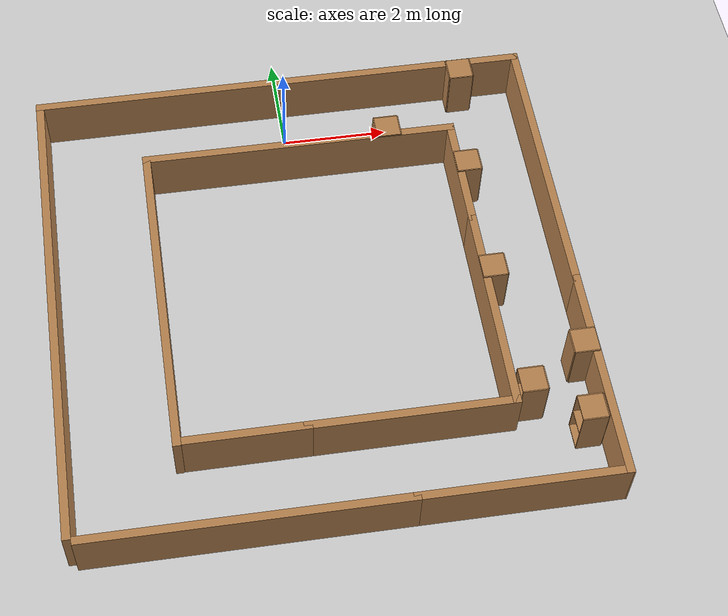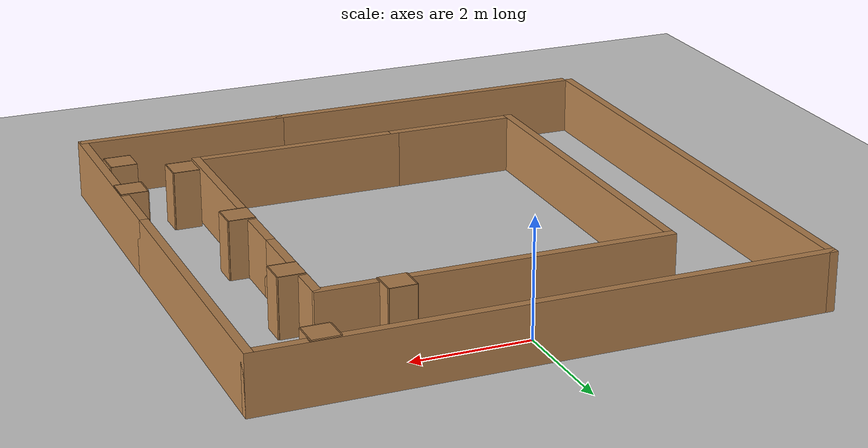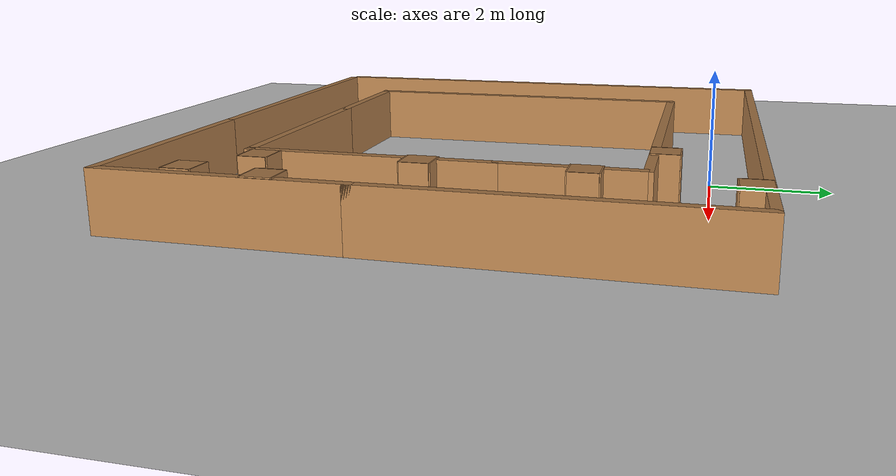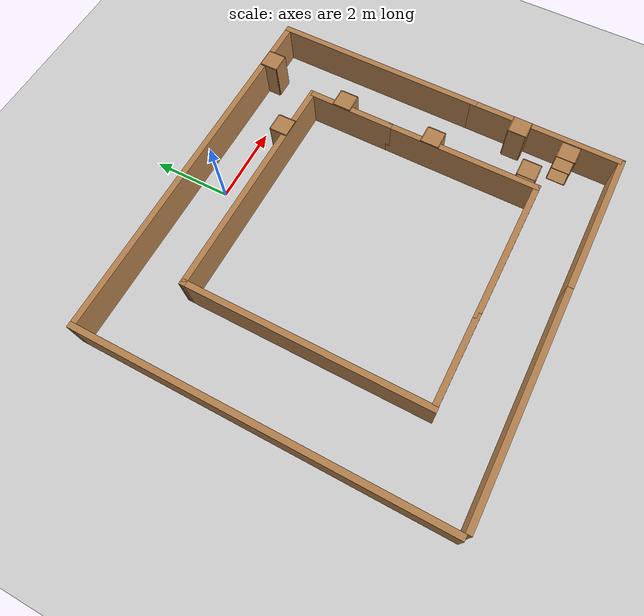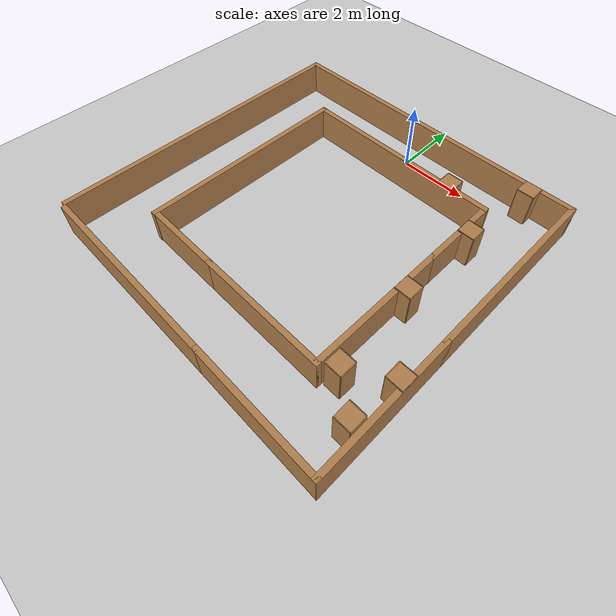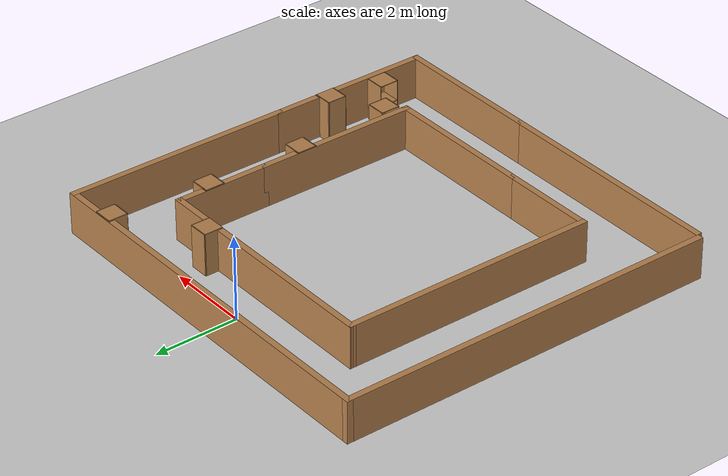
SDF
<sdf version="1.6">
 <world name="default">
  <light name="sun" type="directional">
   <pose>0 0 10 0 -0 0</pose>
   <diffuse>0.8 0.8 0.8 1</diffuse>
   <specular>0.2 0.2 0.2 1</specular>
   <attenuation>
    <range>1000</range>
    <constant>0.9</constant>
    <linear>0.01</linear>
    <quadratic>0.001</quadratic>
   </attenuation>
   <direction>0.5 0.1 -0.9</direction>
  </light>
  <model name="ground_plane">
   <static>1</static>
   <link name="link">
    <collision name="collision">
     <geometry><plane><normal>0 0 1</normal><size>100 100</size></plane></geometry>
     <surface><friction><ode><mu>100</mu><mu2>50</mu2></ode></friction></surface>
    </collision>
    <visual name="visual">
     <cast_shadows>0</cast_shadows>
     <geometry><plane><normal>0 0 1</normal><size>100 100</size></plane></geometry>
     <material>
      <script><uri>file://media/materials/scripts/gazebo.material</uri><name>Gazebo/Grey</name></script>
     </material>
    </visual>
    <velocity_decay><linear>0</linear><angular>0</angular></velocity_decay>
   </link>
  </model>
  <scene><ambient>0.4 0.4 0.4 1</ambient><background>0.7 0.7 0.7 1</background><shadows>0</shadows></scene>
  <physics name="default_physics" default="0" type="ode">
   <max_step_size>0.001</max_step_size>
   <real_time_factor>1</real_time_factor>
   <real_time_update_rate>1000</real_time_update_rate>
  </physics>
  <spherical_coordinates>
   <surface_model>EARTH_WGS84</surface_model>
   <latitude_deg>0</latitude_deg>
   <longitude_deg>0</longitude_deg>
   <elevation>0</elevation>
   <heading_deg>0</heading_deg>
  </spherical_coordinates>
  <model name="Circuit_ql_2">
   <pose>1e-06 -3.85 0 0 -0 1.567</pose>
   <link name="Wall_0">
    <collision name="Wall_0_Collision">
     <geometry><box><size>5.75 0.15 1</size></box></geometry>
     <pose>0 0 0.5 0 -0 0</pose>
    </collision>
    <visual name="Wall_0_Visual">
     <pose>0 0 0.5 0 -0 0</pose>
     <geometry><box><size>5.75 0.15 1</size></box></geometry>
     <material>
      <script><uri>file://media/materials/scripts/gazebo.material</uri><name>Gazebo/Wood</name></script>
      <ambient>1 1 1 1</ambient>
     </material>
    </visual>
    <pose>-4.6 1.725 0 0 0 -1.5708</pose>
   </link>
   <link name="Wall_1">
    <collision name="Wall_1_Collision">
     <geometry><box><size>4 0.15 1</size></box></geometry>
     <pose>0 0 0.5 0 -0 0</pose>
    </collision>
    <visual name="Wall_1_Visual">
     <pose>0 0 0.5 0 -0 0</pose>
     <geometry><box><size>4 0.15 1</size></box></geometry>
     <material>
      <script><uri>file://media/materials/scripts/gazebo.material</uri><name>Gazebo/Wood</name></script>
      <ambient>1 1 1 1</ambient>
     </material>
    </visual>
    <pose>-2.675 -4.675 0 0 -0 0</pose>
   </link>
   <link name="Wall_11">
    <collision name="Wall_11_Collision">
     <geometry><box><size>2.25 0.15 1</size></box></geometry>
     <pose>0 0 0.5 0 -0 0</pose>
    </collision>
    <visual name="Wall_11_Visual">
     <pose>0 0 0.5 0 -0 0</pose>
     <geometry><box><size>2.25 0.15 1</size></box></geometry>
     <material>
      <script><uri>file://media/materials/scripts/gazebo.material</uri><name>Gazebo/Wood</name></script>
      <ambient>1 1 1 1</ambient>
     </material>
    </visual>
    <pose>-3.036 1.559 0 0 0 -1.5708</pose>
   </link>
   <link name="Wall_12">
    <collision name="Wall_12_Collision">
     <geometry><box><size>4 0.15 1</size></box></geometry>
     <pose>0 0 0.5 0 -0 0</pose>
    </collision>
    <visual name="Wall_12_Visual">
     <pose>0 0 0.5 0 -0 0</pose>
     <geometry><box><size>4 0.15 1</size></box></geometry>
     <material>
      <script><uri>file://media/materials/scripts/gazebo.material</uri><name>Gazebo/Wood</name></script>
      <ambient>1 1 1 1</ambient>
     </material>
    </visual>
    <pose>-1.111 -3.091 0 0 -0 0</pose>
   </link>
   <link name="Wall_13">
    <collision name="Wall_13_Collision">
     <geometry><box><size>3.75 0.15 1</size></box></geometry>
     <pose>0 0 0.5 0 -0 0</pose>
    </collision>
    <visual name="Wall_13_Visual">
     <pose>0 0 0.5 0 -0 0</pose>
     <geometry><box><size>3.75 0.15 1</size></box></geometry>
     <material>
      <script><uri>file://media/materials/scripts/gazebo.material</uri><name>Gazebo/Wood</name></script>
      <ambient>1 1 1 1</ambient>
     </material>
    </visual>
    <pose>-3.036 -1.291 0 0 0 -1.5708</pose>
   </link>
   <link name="Wall_14">
    <collision name="Wall_14_Collision">
     <geometry><box><size>2.25 0.15 1</size></box></geometry>
     <pose>0 0 0.5 0 -0 0</pose>
    </collision>
    <visual name="Wall_14_Visual">
     <pose>0 0 0.5 0 -0 0</pose>
     <geometry><box><size>2.25 0.15 1</size></box></geometry>
     <material>
      <script><uri>file://media/materials/scripts/gazebo.material</uri><name>Gazebo/Wood</name></script>
      <ambient>1 1 1 1</ambient>
     </material>
    </visual>
    <pose>1.9 -3.091 0 0 -0 0</pose>
   </link>
   <link name="Wall_15">
    <collision name="Wall_15_Collision">
     <geometry><box><size>5.98502 0.15 1</size></box></geometry>
     <pose>0 0 0.5 0 -0 0</pose>
    </collision>
    <visual name="Wall_15_Visual">
     <pose>0 0 0.5 0 -0 0</pose>
     <geometry><box><size>5.98502 0.15 1</size></box></geometry>
     <material>
      <script><uri>file://media/materials/scripts/gazebo.material</uri><name>Gazebo/Wood</name></script>
      <ambient>1 1 1 1</ambient>
     </material>
    </visual>
    <pose>3.0215 -0.1735 0 0 -0 1.56823</pose>
   </link>
   <link name="Wall_16">
    <collision name="Wall_16_Collision">
     <geometry><box><size>6.2 0.15 1</size></box></geometry>
     <pose>0 0 0.5 0 -0 0</pose>
    </collision>
    <visual name="Wall_16_Visual">
     <pose>0 0 0.5 0 -0 0</pose>
     <geometry><box><size>6.2 0.15 1</size></box></geometry>
     <material>
      <script><uri>file://media/materials/scripts/gazebo.material</uri><name>Gazebo/Wood</name></script>
      <ambient>1 1 1 1</ambient>
     </material>
    </visual>
    <pose>-0.02 2.744 0 0 -0 3.14159</pose>
   </link>
   <link name="Wall_2">
    <collision name="Wall_2_Collision">
     <geometry><box><size>3.7 0.15 1</size></box></geometry>
     <pose>0 0 0.5 0 -0 0</pose>
    </collision>
    <visual name="Wall_2_Visual">
     <pose>0 0 0.5 0 -0 0</pose>
     <geometry><box><size>3.7 0.15 1</size></box></geometry>
     <material>
      <script><uri>file://media/materials/scripts/gazebo.material</uri><name>Gazebo/Wood</name></script>
      <ambient>1 1 1 1</ambient>
     </material>
    </visual>
    <pose>-4.6 -2.875 0 0 0 -1.5708</pose>
   </link>
   <link name="Wall_3">
    <collision name="Wall_3_Collision">
     <geometry><box><size>5.5 0.15 1</size></box></geometry>
     <pose>0 0 0.5 0 -0 0</pose>
    </collision>
    <visual name="Wall_3_Visual">
     <pose>0 0 0.5 0 -0 0</pose>
     <geometry><box><size>5.5 0.15 1</size></box></geometry>
     <material>
      <script><uri>file://media/materials/scripts/gazebo.material</uri><name>Gazebo/Wood</name></script>
      <ambient>1 1 1 1</ambient>
     </material>
    </visual>
    <pose>1.925 -4.675 0 0 -0 0</pose>
   </link>
   <link name="Wall_7">
    <collision name="Wall_7_Collision">
     <geometry><box><size>9.5 0.15 1</size></box></geometry>
     <pose>0 0 0.5 0 -0 0</pose>
    </collision>
    <visual name="Wall_7_Visual">
     <pose>0 0 0.5 0 -0 0</pose>
     <geometry><box><size>9.5 0.15 1</size></box></geometry>
     <material>
      <script><uri>file://media/materials/scripts/gazebo.material</uri><name>Gazebo/Wood</name></script>
      <ambient>1 1 1 1</ambient>
     </material>
    </visual>
    <pose>4.6 0 0 0 -0 1.5708</pose>
   </link>
   <link name="Wall_9">
    <collision name="Wall_9_Collision">
     <geometry><box><size>9.25 0.15 1</size></box></geometry>
     <pose>0 0 0.5 0 -0 0</pose>
    </collision>
    <visual name="Wall_9_Visual">
     <pose>0 0 0.5 0 -0 0</pose>
     <geometry><box><size>9.25 0.15 1</size></box></geometry>
     <material>
      <script><uri>file://media/materials/scripts/gazebo.material</uri><name>Gazebo/Wood</name></script>
      <ambient>1 1 1 1</ambient>
     </material>
    </visual>
    <pose>0.05 4.675 0 0 -0 3.14159</pose>
   </link>
   <static>1</static>
  </model>
  <gravity>0 0 -9.8</gravity>
  <magnetic_field>6e-06 2.3e-05 -4.2e-05</magnetic_field>
  <atmosphere type="adiabatic"/>
  <audio><device>default</device></audio>
  <model name="cabinet">
   <static>1</static>
   <link name="cabinet_bottom_plate">
    <inertial>
     <pose>0 0 -1 0 -0 0</pose>
     <inertia><ixx>2.05</ixx><ixy>0</ixy><ixz>0</ixz><iyy>2.05</iyy><iyz>0</iyz><izz>2.05</izz></inertia>
     <mass>25</mass>
    </inertial>
    <collision name="cabinet_bottom_plate_geom">
     <pose>0 0 0.01 0 -0 0</pose>
     <geometry><box><size>0.45 0.45 0.02</size></box></geometry>
    </collision>
    <visual name="cabinet_bottom_plate_geom_visual">
     <pose>0 0 0.01 0 -0 0</pose>
     <geometry><box><size>0.45 0.45 0.02</size></box></geometry>
     <material>
      <script><uri>file://media/materials/scripts/gazebo.material</uri><name>Gazebo/Wood</name></script>
     </material>
    </visual>
    <collision name="cabinet_bottom_plate_geom_cabinet_back_plate">
     <pose>0.235 0 0.51 0 -0 0</pose>
     <geometry><box><size>0.02 0.45 1.02</size></box></geometry>
    </collision>
    <visual name="cabinet_bottom_plate_geom_cabinet_back_plate_visual">
     <pose>0.235 0 0.51 0 -0 0</pose>
     <geometry><box><size>0.02 0.45 1.02</size></box></geometry>
     <material>
      <script><uri>file://media/materials/scripts/gazebo.material</uri><name>Gazebo/Wood</name></script>
     </material>
    </visual>
    <collision name="cabinet_bottom_plate_geom_cabinet_left_plate">
     <pose>0 0.235 0.51 0 -0 0</pose>
     <geometry><box><size>0.45 0.02 1.02</size></box></geometry>
    </collision>
    <visual name="cabinet_bottom_plate_geom_cabinet_left_plate_visual">
     <pose>0 0.235 0.51 0 -0 0</pose>
     <geometry><box><size>0.45 0.02 1.02</size></box></geometry>
     <material>
      <script><uri>file://media/materials/scripts/gazebo.material</uri><name>Gazebo/Wood</name></script>
     </material>
    </visual>
    <collision name="cabinet_bottom_plate_geom_cabinet_middle_plate">
     <pose>0 0 0.51 0 -0 0</pose>
     <geometry><box><size>0.45 0.45 0.02</size></box></geometry>
    </collision>
    <visual name="cabinet_bottom_plate_geom_cabinet_middle_plate_visual">
     <pose>0 0 0.51 0 -0 0</pose>
     <geometry><box><size>0.45 0.45 0.02</size></box></geometry>
     <material>
      <script><uri>file://media/materials/scripts/gazebo.material</uri><name>Gazebo/Wood</name></script>
     </material>
    </visual>
    <collision name="cabinet_bottom_plate_geom_cabinet_right_plate">
     <pose>0 -0.235 0.51 0 -0 0</pose>
     <geometry><box><size>0.45 0.02 1.02</size></box></geometry>
    </collision>
    <visual name="cabinet_bottom_plate_geom_cabinet_right_plate_visual">
     <pose>0 -0.235 0.51 0 -0 0</pose>
     <geometry><box><size>0.45 0.02 1.02</size></box></geometry>
     <material>
      <script><uri>file://media/materials/scripts/gazebo.material</uri><name>Gazebo/Wood</name></script>
     </material>
    </visual>
    <collision name="cabinet_bottom_plate_geom_cabinet_top_plate">
     <pose>0 0 1.01 0 -0 0</pose>
     <geometry><box><size>0.45 0.45 0.02</size></box></geometry>
    </collision>
    <visual name="cabinet_bottom_plate_geom_cabinet_top_plate_visual">
     <pose>0 0 1.01 0 -0 0</pose>
     <geometry><box><size>0.45 0.45 0.02</size></box></geometry>
     <material>
      <script><uri>file://media/materials/scripts/gazebo.material</uri><name>Gazebo/Wood</name></script>
     </material>
    </visual>
   </link>
   <pose>3.26511 -1.70678 0 0 -0 0</pose>
  </model>
  <model name="cabinet_0">
   <static>1</static>
   <link name="cabinet_bottom_plate">
    <inertial>
     <pose>0 0 -1 0 -0 0</pose>
     <inertia><ixx>2.05</ixx><ixy>0</ixy><ixz>0</ixz><iyy>2.05</iyy><iyz>0</iyz><izz>2.05</izz></inertia>
     <mass>25</mass>
    </inertial>
    <collision name="cabinet_bottom_plate_geom">
     <pose>0 0 0.01 0 -0 0</pose>
     <geometry><box><size>0.45 0.45 0.02</size></box></geometry>
    </collision>
    <visual name="cabinet_bottom_plate_geom_visual">
     <pose>0 0 0.01 0 -0 0</pose>
     <geometry><box><size>0.45 0.45 0.02</size></box></geometry>
     <material>
      <script><uri>file://media/materials/scripts/gazebo.material</uri><name>Gazebo/Wood</name></script>
     </material>
    </visual>
    <collision name="cabinet_bottom_plate_geom_cabinet_back_plate">
     <pose>0.235 0 0.51 0 -0 0</pose>
     <geometry><box><size>0.02 0.45 1.02</size></box></geometry>
    </collision>
    <visual name="cabinet_bottom_plate_geom_cabinet_back_plate_visual">
     <pose>0.235 0 0.51 0 -0 0</pose>
     <geometry><box><size>0.02 0.45 1.02</size></box></geometry>
     <material>
      <script><uri>file://media/materials/scripts/gazebo.material</uri><name>Gazebo/Wood</name></script>
     </material>
    </visual>
    <collision name="cabinet_bottom_plate_geom_cabinet_left_plate">
     <pose>0 0.235 0.51 0 -0 0</pose>
     <geometry><box><size>0.45 0.02 1.02</size></box></geometry>
    </collision>
    <visual name="cabinet_bottom_plate_geom_cabinet_left_plate_visual">
     <pose>0 0.235 0.51 0 -0 0</pose>
     <geometry><box><size>0.45 0.02 1.02</size></box></geometry>
     <material>
      <script><uri>file://media/materials/scripts/gazebo.material</uri><name>Gazebo/Wood</name></script>
     </material>
    </visual>
    <collision name="cabinet_bottom_plate_geom_cabinet_middle_plate">
     <pose>0 0 0.51 0 -0 0</pose>
     <geometry><box><size>0.45 0.45 0.02</size></box></geometry>
    </collision>
    <visual name="cabinet_bottom_plate_geom_cabinet_middle_plate_visual">
     <pose>0 0 0.51 0 -0 0</pose>
     <geometry><box><size>0.45 0.45 0.02</size></box></geometry>
     <material>
      <script><uri>file://media/materials/scripts/gazebo.material</uri><name>Gazebo/Wood</name></script>
     </material>
    </visual>
    <collision name="cabinet_bottom_plate_geom_cabinet_right_plate">
     <pose>0 -0.235 0.51 0 -0 0</pose>
     <geometry><box><size>0.45 0.02 1.02</size></box></geometry>
    </collision>
    <visual name="cabinet_bottom_plate_geom_cabinet_right_plate_visual">
     <pose>0 -0.235 0.51 0 -0 0</pose>
     <geometry><box><size>0.45 0.02 1.02</size></box></geometry>
     <material>
      <script><uri>file://media/materials/scripts/gazebo.material</uri><name>Gazebo/Wood</name></script>
     </material>
    </visual>
    <collision name="cabinet_bottom_plate_geom_cabinet_top_plate">
     <pose>0 0 1.01 0 -0 0</pose>
     <geometry><box><size>0.45 0.45 0.02</size></box></geometry>
    </collision>
    <visual name="cabinet_bottom_plate_geom_cabinet_top_plate_visual">
     <pose>0 0 1.01 0 -0 0</pose>
     <geometry><box><size>0.45 0.45 0.02</size></box></geometry>
     <material>
      <script><uri>file://media/materials/scripts/gazebo.material</uri><name>Gazebo/Wood</name></script>
     </material>
    </visual>
   </link>
   <pose>3.24964 -4.13099 0 0 -0 0</pose>
  </model>
  <model name="cabinet_1">
   <static>1</static>
   <link name="cabinet_bottom_plate">
    <inertial>
     <pose>0 0 -1 0 -0 0</pose>
     <inertia><ixx>2.05</ixx><ixy>0</ixy><ixz>0</ixz><iyy>2.05</iyy><iyz>0</iyz><izz>2.05</izz></inertia>
     <mass>25</mass>
    </inertial>
    <collision name="cabinet_bottom_plate_geom">
     <pose>0 0 0.01 0 -0 0</pose>
     <geometry><box><size>0.45 0.45 0.02</size></box></geometry>
    </collision>
    <visual name="cabinet_bottom_plate_geom_visual">
     <pose>0 0 0.01 0 -0 0</pose>
     <geometry><box><size>0.45 0.45 0.02</size></box></geometry>
     <material>
      <script><uri>file://media/materials/scripts/gazebo.material</uri><name>Gazebo/Wood</name></script>
     </material>
    </visual>
    <collision name="cabinet_bottom_plate_geom_cabinet_back_plate">
     <pose>0.235 0 0.51 0 -0 0</pose>
     <geometry><box><size>0.02 0.45 1.02</size></box></geometry>
    </collision>
    <visual name="cabinet_bottom_plate_geom_cabinet_back_plate_visual">
     <pose>0.235 0 0.51 0 -0 0</pose>
     <geometry><box><size>0.02 0.45 1.02</size></box></geometry>
     <material>
      <script><uri>file://media/materials/scripts/gazebo.material</uri><name>Gazebo/Wood</name></script>
     </material>
    </visual>
    <collision name="cabinet_bottom_plate_geom_cabinet_left_plate">
     <pose>0 0.235 0.51 0 -0 0</pose>
     <geometry><box><size>0.45 0.02 1.02</size></box></geometry>
    </collision>
    <visual name="cabinet_bottom_plate_geom_cabinet_left_plate_visual">
     <pose>0 0.235 0.51 0 -0 0</pose>
     <geometry><box><size>0.45 0.02 1.02</size></box></geometry>
     <material>
      <script><uri>file://media/materials/scripts/gazebo.material</uri><name>Gazebo/Wood</name></script>
     </material>
    </visual>
    <collision name="cabinet_bottom_plate_geom_cabinet_middle_plate">
     <pose>0 0 0.51 0 -0 0</pose>
     <geometry><box><size>0.45 0.45 0.02</size></box></geometry>
    </collision>
    <visual name="cabinet_bottom_plate_geom_cabinet_middle_plate_visual">
     <pose>0 0 0.51 0 -0 0</pose>
     <geometry><box><size>0.45 0.45 0.02</size></box></geometry>
     <material>
      <script><uri>file://media/materials/scripts/gazebo.material</uri><name>Gazebo/Wood</name></script>
     </material>
    </visual>
    <collision name="cabinet_bottom_plate_geom_cabinet_right_plate">
     <pose>0 -0.235 0.51 0 -0 0</pose>
     <geometry><box><size>0.45 0.02 1.02</size></box></geometry>
    </collision>
    <visual name="cabinet_bottom_plate_geom_cabinet_right_plate_visual">
     <pose>0 -0.235 0.51 0 -0 0</pose>
     <geometry><box><size>0.45 0.02 1.02</size></box></geometry>
     <material>
      <script><uri>file://media/materials/scripts/gazebo.material</uri><name>Gazebo/Wood</name></script>
     </material>
    </visual>
    <collision name="cabinet_bottom_plate_geom_cabinet_top_plate">
     <pose>0 0 1.01 0 -0 0</pose>
     <geometry><box><size>0.45 0.45 0.02</size></box></geometry>
    </collision>
    <visual name="cabinet_bottom_plate_geom_cabinet_top_plate_visual">
     <pose>0 0 1.01 0 -0 0</pose>
     <geometry><box><size>0.45 0.45 0.02</size></box></geometry>
     <material>
      <script><uri>file://media/materials/scripts/gazebo.material</uri><name>Gazebo/Wood</name></script>
     </material>
    </visual>
   </link>
   <pose>4.50437 -5.91754 0 0 -0 3.14</pose>
  </model>
  <model name="cabinet_2">
   <static>1</static>
   <link name="cabinet_bottom_plate">
    <inertial>
     <pose>0 0 -1 0 -0 0</pose>
     <inertia><ixx>2.05</ixx><ixy>0</ixy><ixz>0</ixz><iyy>2.05</iyy><iyz>0</iyz><izz>2.05</izz></inertia>
     <mass>25</mass>
    </inertial>
    <collision name="cabinet_bottom_plate_geom">
     <pose>0 0 0.01 0 -0 0</pose>
     <geometry><box><size>0.45 0.45 0.02</size></box></geometry>
    </collision>
    <visual name="cabinet_bottom_plate_geom_visual">
     <pose>0 0 0.01 0 -0 0</pose>
     <geometry><box><size>0.45 0.45 0.02</size></box></geometry>
     <material>
      <script><uri>file://media/materials/scripts/gazebo.material</uri><name>Gazebo/Wood</name></script>
     </material>
    </visual>
    <collision name="cabinet_bottom_plate_geom_cabinet_back_plate">
     <pose>0.235 0 0.51 0 -0 0</pose>
     <geometry><box><size>0.02 0.45 1.02</size></box></geometry>
    </collision>
    <visual name="cabinet_bottom_plate_geom_cabinet_back_plate_visual">
     <pose>0.235 0 0.51 0 -0 0</pose>
     <geometry><box><size>0.02 0.45 1.02</size></box></geometry>
     <material>
      <script><uri>file://media/materials/scripts/gazebo.material</uri><name>Gazebo/Wood</name></script>
     </material>
    </visual>
    <collision name="cabinet_bottom_plate_geom_cabinet_left_plate">
     <pose>0 0.235 0.51 0 -0 0</pose>
     <geometry><box><size>0.45 0.02 1.02</size></box></geometry>
    </collision>
    <visual name="cabinet_bottom_plate_geom_cabinet_left_plate_visual">
     <pose>0 0.235 0.51 0 -0 0</pose>
     <geometry><box><size>0.45 0.02 1.02</size></box></geometry>
     <material>
      <script><uri>file://media/materials/scripts/gazebo.material</uri><name>Gazebo/Wood</name></script>
     </material>
    </visual>
    <collision name="cabinet_bottom_plate_geom_cabinet_middle_plate">
     <pose>0 0 0.51 0 -0 0</pose>
     <geometry><box><size>0.45 0.45 0.02</size></box></geometry>
    </collision>
    <visual name="cabinet_bottom_plate_geom_cabinet_middle_plate_visual">
     <pose>0 0 0.51 0 -0 0</pose>
     <geometry><box><size>0.45 0.45 0.02</size></box></geometry>
     <material>
      <script><uri>file://media/materials/scripts/gazebo.material</uri><name>Gazebo/Wood</name></script>
     </material>
    </visual>
    <collision name="cabinet_bottom_plate_geom_cabinet_right_plate">
     <pose>0 -0.235 0.51 0 -0 0</pose>
     <geometry><box><size>0.45 0.02 1.02</size></box></geometry>
    </collision>
    <visual name="cabinet_bottom_plate_geom_cabinet_right_plate_visual">
     <pose>0 -0.235 0.51 0 -0 0</pose>
     <geometry><box><size>0.45 0.02 1.02</size></box></geometry>
     <material>
      <script><uri>file://media/materials/scripts/gazebo.material</uri><name>Gazebo/Wood</name></script>
     </material>
    </visual>
    <collision name="cabinet_bottom_plate_geom_cabinet_top_plate">
     <pose>0 0 1.01 0 -0 0</pose>
     <geometry><box><size>0.45 0.45 0.02</size></box></geometry>
    </collision>
    <visual name="cabinet_bottom_plate_geom_cabinet_top_plate_visual">
     <pose>0 0 1.01 0 -0 0</pose>
     <geometry><box><size>0.45 0.45 0.02</size></box></geometry>
     <material>
      <script><uri>file://media/materials/scripts/gazebo.material</uri><name>Gazebo/Wood</name></script>
     </material>
    </visual>
   </link>
   <pose>1.90309 -0.679288 0 0 -0 1.57</pose>
  </model>
  <model name="cabinet_3">
   <static>1</static>
   <link name="cabinet_bottom_plate">
    <inertial>
     <pose>0 0 -1 0 -0 0</pose>
     <inertia><ixx>2.05</ixx><ixy>0</ixy><ixz>0</ixz><iyy>2.05</iyy><iyz>0</iyz><izz>2.05</izz></inertia>
     <mass>25</mass>
    </inertial>
    <collision name="cabinet_bottom_plate_geom">
     <pose>0 0 0.01 0 -0 0</pose>
     <geometry><box><size>0.45 0.45 0.02</size></box></geometry>
    </collision>
    <visual name="cabinet_bottom_plate_geom_visual">
     <pose>0 0 0.01 0 -0 0</pose>
     <geometry><box><size>0.45 0.45 0.02</size></box></geometry>
     <material>
      <script><uri>file://media/materials/scripts/gazebo.material</uri><name>Gazebo/Wood</name></script>
     </material>
    </visual>
    <collision name="cabinet_bottom_plate_geom_cabinet_back_plate">
     <pose>0.235 0 0.51 0 -0 0</pose>
     <geometry><box><size>0.02 0.45 1.02</size></box></geometry>
    </collision>
    <visual name="cabinet_bottom_plate_geom_cabinet_back_plate_visual">
     <pose>0.235 0 0.51 0 -0 0</pose>
     <geometry><box><size>0.02 0.45 1.02</size></box></geometry>
     <material>
      <script><uri>file://media/materials/scripts/gazebo.material</uri><name>Gazebo/Wood</name></script>
     </material>
    </visual>
    <collision name="cabinet_bottom_plate_geom_cabinet_left_plate">
     <pose>0 0.235 0.51 0 -0 0</pose>
     <geometry><box><size>0.45 0.02 1.02</size></box></geometry>
    </collision>
    <visual name="cabinet_bottom_plate_geom_cabinet_left_plate_visual">
     <pose>0 0.235 0.51 0 -0 0</pose>
     <geometry><box><size>0.45 0.02 1.02</size></box></geometry>
     <material>
      <script><uri>file://media/materials/scripts/gazebo.material</uri><name>Gazebo/Wood</name></script>
     </material>
    </visual>
    <collision name="cabinet_bottom_plate_geom_cabinet_middle_plate">
     <pose>0 0 0.51 0 -0 0</pose>
     <geometry><box><size>0.45 0.45 0.02</size></box></geometry>
    </collision>
    <visual name="cabinet_bottom_plate_geom_cabinet_middle_plate_visual">
     <pose>0 0 0.51 0 -0 0</pose>
     <geometry><box><size>0.45 0.45 0.02</size></box></geometry>
     <material>
      <script><uri>file://media/materials/scripts/gazebo.material</uri><name>Gazebo/Wood</name></script>
     </material>
    </visual>
    <collision name="cabinet_bottom_plate_geom_cabinet_right_plate">
     <pose>0 -0.235 0.51 0 -0 0</pose>
     <geometry><box><size>0.45 0.02 1.02</size></box></geometry>
    </collision>
    <visual name="cabinet_bottom_plate_geom_cabinet_right_plate_visual">
     <pose>0 -0.235 0.51 0 -0 0</pose>
     <geometry><box><size>0.45 0.02 1.02</size></box></geometry>
     <material>
      <script><uri>file://media/materials/scripts/gazebo.material</uri><name>Gazebo/Wood</name></script>
     </material>
    </visual>
    <collision name="cabinet_bottom_plate_geom_cabinet_top_plate">
     <pose>0 0 1.01 0 -0 0</pose>
     <geometry><box><size>0.45 0.45 0.02</size></box></geometry>
    </collision>
    <visual name="cabinet_bottom_plate_geom_cabinet_top_plate_visual">
     <pose>0 0 1.01 0 -0 0</pose>
     <geometry><box><size>0.45 0.45 0.02</size></box></geometry>
     <material>
      <script><uri>file://media/materials/scripts/gazebo.material</uri><name>Gazebo/Wood</name></script>
     </material>
    </visual>
   </link>
   <pose>3.55668 0.566164 0 0 0 -1.57</pose>
  </model>
  <model name="cabinet_4">
   <static>1</static>
   <link name="cabinet_bottom_plate">
    <inertial>
     <pose>0 0 -1 0 -0 0</pose>
     <inertia><ixx>2.05</ixx><ixy>0</ixy><ixz>0</ixz><iyy>2.05</iyy><iyz>0</iyz><izz>2.05</izz></inertia>
     <mass>25</mass>
    </inertial>
    <collision name="cabinet_bottom_plate_geom">
     <pose>0 0 0.01 0 -0 0</pose>
     <geometry><box><size>0.45 0.45 0.02</size></box></geometry>
    </collision>
    <visual name="cabinet_bottom_plate_geom_visual">
     <pose>0 0 0.01 0 -0 0</pose>
     <geometry><box><size>0.45 0.45 0.02</size></box></geometry>
     <material>
      <script><uri>file://media/materials/scripts/gazebo.material</uri><name>Gazebo/Wood</name></script>
     </material>
    </visual>
    <collision name="cabinet_bottom_plate_geom_cabinet_back_plate">
     <pose>0.235 0 0.51 0 -0 0</pose>
     <geometry><box><size>0.02 0.45 1.02</size></box></geometry>
    </collision>
    <visual name="cabinet_bottom_plate_geom_cabinet_back_plate_visual">
     <pose>0.235 0 0.51 0 -0 0</pose>
     <geometry><box><size>0.02 0.45 1.02</size></box></geometry>
     <material>
      <script><uri>file://media/materials/scripts/gazebo.material</uri><name>Gazebo/Wood</name></script>
     </material>
    </visual>
    <collision name="cabinet_bottom_plate_geom_cabinet_left_plate">
     <pose>0 0.235 0.51 0 -0 0</pose>
     <geometry><box><size>0.45 0.02 1.02</size></box></geometry>
    </collision>
    <visual name="cabinet_bottom_plate_geom_cabinet_left_plate_visual">
     <pose>0 0.235 0.51 0 -0 0</pose>
     <geometry><box><size>0.45 0.02 1.02</size></box></geometry>
     <material>
      <script><uri>file://media/materials/scripts/gazebo.material</uri><name>Gazebo/Wood</name></script>
     </material>
    </visual>
    <collision name="cabinet_bottom_plate_geom_cabinet_middle_plate">
     <pose>0 0 0.51 0 -0 0</pose>
     <geometry><box><size>0.45 0.45 0.02</size></box></geometry>
    </collision>
    <visual name="cabinet_bottom_plate_geom_cabinet_middle_plate_visual">
     <pose>0 0 0.51 0 -0 0</pose>
     <geometry><box><size>0.45 0.45 0.02</size></box></geometry>
     <material>
      <script><uri>file://media/materials/scripts/gazebo.material</uri><name>Gazebo/Wood</name></script>
     </material>
    </visual>
    <collision name="cabinet_bottom_plate_geom_cabinet_right_plate">
     <pose>0 -0.235 0.51 0 -0 0</pose>
     <geometry><box><size>0.45 0.02 1.02</size></box></geometry>
    </collision>
    <visual name="cabinet_bottom_plate_geom_cabinet_right_plate_visual">
     <pose>0 -0.235 0.51 0 -0 0</pose>
     <geometry><box><size>0.45 0.02 1.02</size></box></geometry>
     <material>
      <script><uri>file://media/materials/scripts/gazebo.material</uri><name>Gazebo/Wood</name></script>
     </material>
    </visual>
    <collision name="cabinet_bottom_plate_geom_cabinet_top_plate">
     <pose>0 0 1.01 0 -0 0</pose>
     <geometry><box><size>0.45 0.45 0.02</size></box></geometry>
    </collision>
    <visual name="cabinet_bottom_plate_geom_cabinet_top_plate_visual">
     <pose>0 0 1.01 0 -0 0</pose>
     <geometry><box><size>0.45 0.45 0.02</size></box></geometry>
     <material>
      <script><uri>file://media/materials/scripts/gazebo.material</uri><name>Gazebo/Wood</name></script>
     </material>
    </visual>
   </link>
   <pose>3.42906 -6.5601 0 0 -0 0</pose>
  </model>
  <model name="cabinet_5">
   <static>1</static>
   <link name="cabinet_bottom_plate">
    <inertial>
     <pose>0 0 -1 0 -0 0</pose>
     <inertia><ixx>2.05</ixx><ixy>0</ixy><ixz>0</ixz><iyy>2.05</iyy><iyz>0</iyz><izz>2.05</izz></inertia>
     <mass>25</mass>
    </inertial>
    <collision name="cabinet_bottom_plate_geom">
     <pose>0 0 0.01 0 -0 0</pose>
     <geometry><box><size>0.45 0.45 0.02</size></box></geometry>
    </collision>
    <visual name="cabinet_bottom_plate_geom_visual">
     <pose>0 0 0.01 0 -0 0</pose>
     <geometry><box><size>0.45 0.45 0.02</size></box></geometry>
     <material>
      <script><uri>file://media/materials/scripts/gazebo.material</uri><name>Gazebo/Wood</name></script>
     </material>
    </visual>
    <collision name="cabinet_bottom_plate_geom_cabinet_back_plate">
     <pose>0.235 0 0.51 0 -0 0</pose>
     <geometry><box><size>0.02 0.45 1.02</size></box></geometry>
    </collision>
    <visual name="cabinet_bottom_plate_geom_cabinet_back_plate_visual">
     <pose>0.235 0 0.51 0 -0 0</pose>
     <geometry><box><size>0.02 0.45 1.02</size></box></geometry>
     <material>
      <script><uri>file://media/materials/scripts/gazebo.material</uri><name>Gazebo/Wood</name></script>
     </material>
    </visual>
    <collision name="cabinet_bottom_plate_geom_cabinet_left_plate">
     <pose>0 0.235 0.51 0 -0 0</pose>
     <geometry><box><size>0.45 0.02 1.02</size></box></geometry>
    </collision>
    <visual name="cabinet_bottom_plate_geom_cabinet_left_plate_visual">
     <pose>0 0.235 0.51 0 -0 0</pose>
     <geometry><box><size>0.45 0.02 1.02</size></box></geometry>
     <material>
      <script><uri>file://media/materials/scripts/gazebo.material</uri><name>Gazebo/Wood</name></script>
     </material>
    </visual>
    <collision name="cabinet_bottom_plate_geom_cabinet_middle_plate">
     <pose>0 0 0.51 0 -0 0</pose>
     <geometry><box><size>0.45 0.45 0.02</size></box></geometry>
    </collision>
    <visual name="cabinet_bottom_plate_geom_cabinet_middle_plate_visual">
     <pose>0 0 0.51 0 -0 0</pose>
     <geometry><box><size>0.45 0.45 0.02</size></box></geometry>
     <material>
      <script><uri>file://media/materials/scripts/gazebo.material</uri><name>Gazebo/Wood</name></script>
     </material>
    </visual>
    <collision name="cabinet_bottom_plate_geom_cabinet_right_plate">
     <pose>0 -0.235 0.51 0 -0 0</pose>
     <geometry><box><size>0.45 0.02 1.02</size></box></geometry>
    </collision>
    <visual name="cabinet_bottom_plate_geom_cabinet_right_plate_visual">
     <pose>0 -0.235 0.51 0 -0 0</pose>
     <geometry><box><size>0.45 0.02 1.02</size></box></geometry>
     <material>
      <script><uri>file://media/materials/scripts/gazebo.material</uri><name>Gazebo/Wood</name></script>
     </material>
    </visual>
    <collision name="cabinet_bottom_plate_geom_cabinet_top_plate">
     <pose>0 0 1.01 0 -0 0</pose>
     <geometry><box><size>0.45 0.45 0.02</size></box></geometry>
    </collision>
    <visual name="cabinet_bottom_plate_geom_cabinet_top_plate_visual">
     <pose>0 0 1.01 0 -0 0</pose>
     <geometry><box><size>0.45 0.45 0.02</size></box></geometry>
     <material>
      <script><uri>file://media/materials/scripts/gazebo.material</uri><name>Gazebo/Wood</name></script>
     </material>
    </visual>
   </link>
   <pose>4.32026 -7.23432 0 0 -0 0</pose>
  </model>
 </world>
</sdf>
